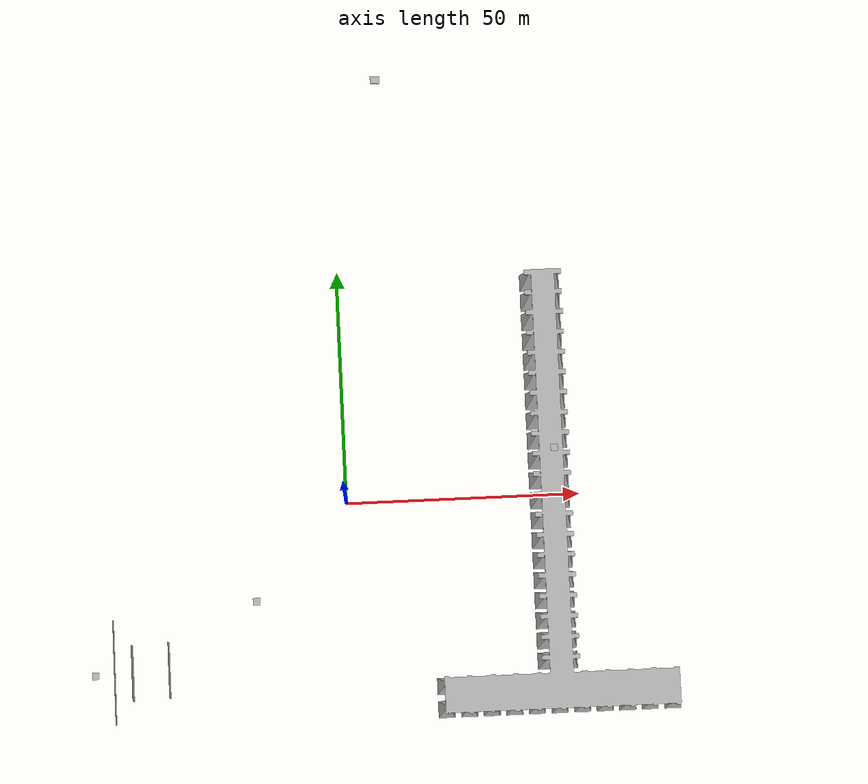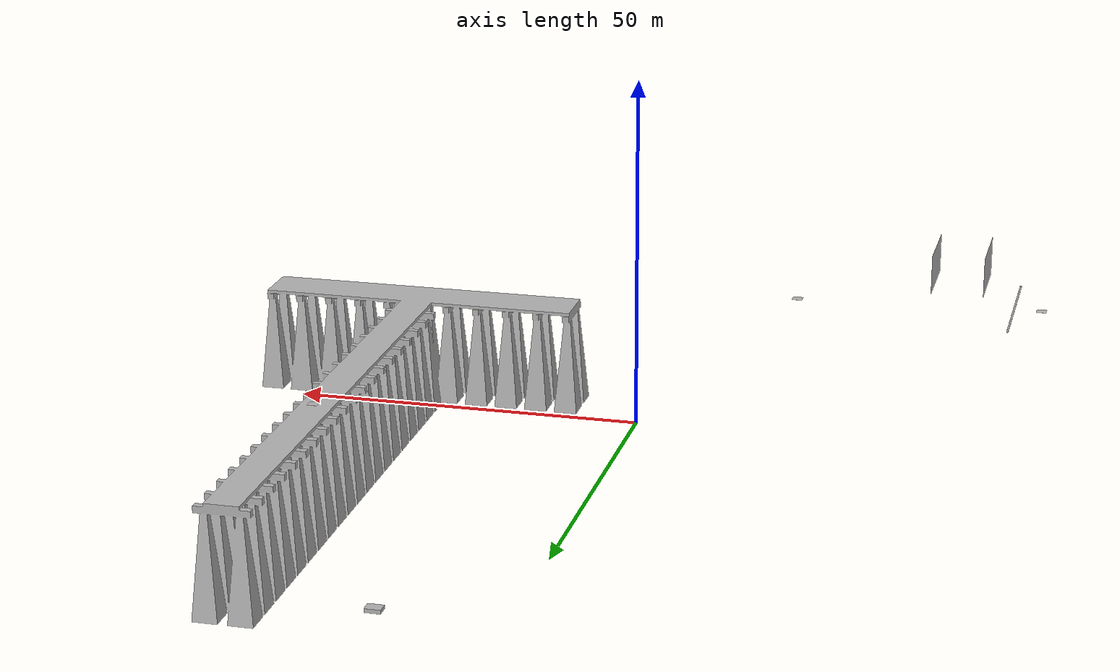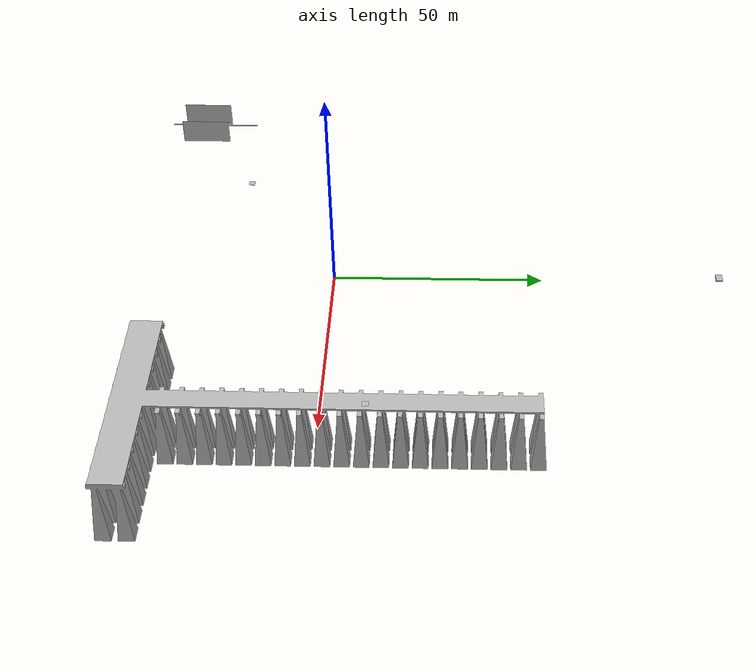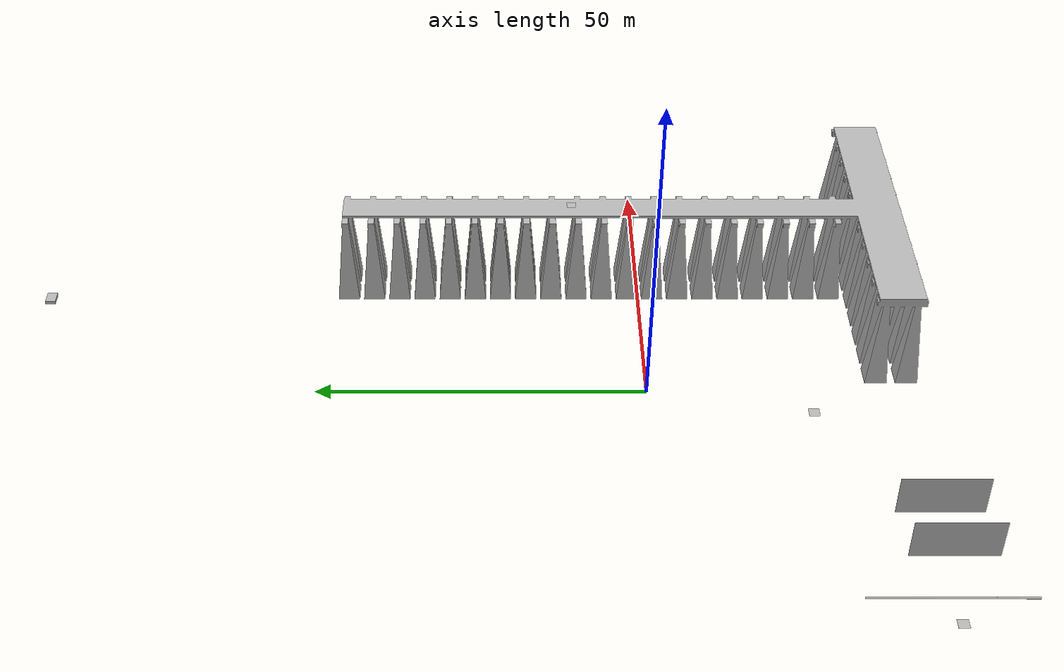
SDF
<sdf version="1.5">
 <world name="default">
  <plugin name="mrs_gazebo_static_transform_republisher_plugin" filename="libMRSGazeboStaticTransformRepublisher.so"/>
  <spherical_coordinates>
   <surface_model>EARTH_WGS84</surface_model>
   <latitude_deg>47.397743</latitude_deg>
   <longitude_deg>8.545594</longitude_deg>
   <elevation>0.0</elevation>
   <heading_deg>0</heading_deg>
  </spherical_coordinates>
  <physics name="default_physics" default="0" type="ode">
   <gravity>0 0 -9.8066</gravity>
   <ode>
    <solver>
     <type>quick</type>
     <iters>10</iters>
     <sor>1.3</sor>
     <use_dynamic_moi_rescaling>0</use_dynamic_moi_rescaling>
    </solver>
    <constraints>
     <cfm>0</cfm>
     <erp>0.2</erp>
     <contact_max_correcting_vel>1000</contact_max_correcting_vel>
     <contact_surface_layer>0.001</contact_surface_layer>
    </constraints>
   </ode>
   <max_step_size>0.004</max_step_size>
   <real_time_factor>1</real_time_factor>
   <real_time_update_rate>250</real_time_update_rate>
   <magnetic_field>6.0e-06 2.3e-05 -4.2e-05</magnetic_field>
  </physics>
  <scene><shadows>false</shadows></scene>
  <light name="sun" type="directional">
   <pose>0 0 1000 0.4 0.2 0</pose>
   <diffuse>1 1 1 1</diffuse>
   <specular>0.6 0.6 0.6 1</specular>
   <direction>0.1 0.1 -0.9</direction>
   <attenuation>
    <range>20</range>
    <constant>0.5</constant>
    <linear>0.01</linear>
    <quadratic>0.001</quadratic>
   </attenuation>
  </light>
  <model name="banner_front">
   <include><uri>model://banner</uri><pose>-22.2 -41.3 12 0 -0 -1.5708</pose></include>
  </model>
  <model name="banner_back">
   <include><uri>model://banner</uri><pose>-61.65 -28.4 12 0 -0 1.5708</pose></include>
  </model>
  <model name="cost_base"><include><uri>model://cost_base</uri><pose>10 90 10 1.57 0 0</pose></include></model>
  <model name="land_base_1">
   <include><uri>model://base_land</uri><pose>-19.5 -21 13.612 0 0 0</pose></include>
  </model>
  <model name="land_base_2"><include><uri>model://base_land</uri><pose>45 10 2.6 0 0 0</pose></include></model>
  <model name="land_base_3">
   <include><uri>model://base_land</uri><pose>-54 -35 9.85 0 0 0</pose></include>
  </model>
  <model name="pipe_oil_offshore">
   <include><uri>model://pipe_oil_offshore</uri><pose>-50 -34.5 10 0 -0 1.57</pose></include>
  </model>
  <model name="sensor_green_1">
   <include><uri>model://sensor_green</uri><pose>-50 -30 10.16 0.0 0.0 0.0</pose></include>
  </model>
  <model name="sensor_red_1">
   <include><uri>model://sensor_red</uri><pose>-50 -40 10.16 0.0 0.0 0.0</pose></include>
  </model>
  <include><uri>model://pier</uri><pose>40 50 -14 0 0 0</pose></include>
 </world>
</sdf>

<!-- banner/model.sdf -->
<sdf version='1.6'>
  <model name='banner'>
    <link name='link_0'>
      <inertial>
        <mass>1</mass>
        <inertia>
          <ixx>0.166667</ixx>
          <ixy>0</ixy>
          <ixz>0</ixz>
          <iyy>0.166667</iyy>
          <iyz>0</iyz>
          <izz>0.166667</izz>
        </inertia>
      </inertial>
      <pose frame=''>0 0 0 0 -0 0</pose>
      <visual name='visual'>
        <pose frame=''>0 0 0 0 -0 0</pose>
        <geometry>
          <mesh>
            <uri>model://banner/meshes/banner.obj</uri>
            <scale>2 2 2</scale>
          </mesh>
        </geometry>
        <transparency>0</transparency>
        <cast_shadows>1</cast_shadows>
      </visual>
      <collision name='collision'>
        <laser_retro>0</laser_retro>
        <max_contacts>10</max_contacts>
        <pose frame=''>0 0 0 0 -0 0</pose>
        <geometry>
          <mesh>
            <uri>model://banner/meshes/banner.obj</uri>
            <scale>2 2 2</scale>
          </mesh>
        </geometry>
        <surface>
          <friction>
            <ode>
              <mu>1</mu>
              <mu2>1</mu2>
              <fdir1>0 0 0</fdir1>
              <slip1>0</slip1>
              <slip2>0</slip2>
            </ode>
            <torsional>
              <coefficient>1</coefficient>
              <patch_radius>0</patch_radius>
              <surface_radius>0</surface_radius>
              <use_patch_radius>1</use_patch_radius>
              <ode>
                <slip>0</slip>
              </ode>
            </torsional>
          </friction>
          <bounce>
            <restitution_coefficient>0</restitution_coefficient>
            <threshold>1e+06</threshold>
          </bounce>
          <contact>
            <collide_without_contact>0</collide_without_contact>
            <collide_without_contact_bitmask>1</collide_without_contact_bitmask>
            <collide_bitmask>1</collide_bitmask>
            <ode>
              <soft_cfm>0</soft_cfm>
              <soft_erp>0.2</soft_erp>
              <kp>1e+13</kp>
              <kd>1</kd>
              <max_vel>0.01</max_vel>
              <min_depth>0</min_depth>
            </ode>
            <bullet>
              <split_impulse>1</split_impulse>
              <split_impulse_penetration_threshold>-0.01</split_impulse_penetration_threshold>
              <soft_cfm>0</soft_cfm>
              <soft_erp>0.2</soft_erp>
              <kp>1e+13</kp>
              <kd>1</kd>
            </bullet>
          </contact>
        </surface>
      </collision>
    </link>
    <static>1</static>
    <allow_auto_disable>1</allow_auto_disable>
  </model>
</sdf>

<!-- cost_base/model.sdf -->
<sdf version='1.6'>
  <model name='cost_base'>
    <link name='link'>
      <inertial>
        <mass>1</mass>
        <inertia>
          <ixx>0.166667</ixx>
          <ixy>0</ixy>
          <ixz>0</ixz>
          <iyy>0.166667</iyy>
          <iyz>0</iyz>
          <izz>0.166667</izz>
        </inertia>
      </inertial>
      <pose frame=''>0 0 0 0 -0 0</pose>
      <visual name='visual'>
        <pose frame=''>0 0 0 0 -0 0</pose>
        <geometry>
          <mesh>
            <uri>model://cost_base/meshes/cost_base.obj</uri>
            <scale>1.0 1.0 1.0</scale>
          </mesh>
        </geometry>
        <transparency>0</transparency>
        <cast_shadows>1</cast_shadows>
      </visual>
      <collision name='collision'>
        <laser_retro>0</laser_retro>
        <max_contacts>100</max_contacts>
        <pose frame=''>0 0 0 0 -0 0</pose>
        <geometry>
          <mesh>
            <uri>model://cost_base/meshes/cost_base.obj</uri>
            <scale>1.0 1.0 1.0</scale>
          </mesh>
        </geometry>
        <surface>
          <friction>
            <ode>
              <mu>100</mu>
              <mu2>100</mu2>
              <fdir1>0 0 0</fdir1>
              <slip1>0</slip1>
              <slip2>0</slip2>
            </ode>
            <torsional>
              <coefficient>1</coefficient>
              <patch_radius>1</patch_radius>
              <surface_radius>1</surface_radius>
              <use_patch_radius>1</use_patch_radius>
              <ode>
                <slip>0</slip>
              </ode>
            </torsional>
          </friction>
          <bounce>
            <restitution_coefficient>1</restitution_coefficient>
            <threshold>1e+06</threshold>
          </bounce>
          <contact>
            <collide_without_contact>0</collide_without_contact>
            <collide_without_contact_bitmask>1</collide_without_contact_bitmask>
            <collide_bitmask>1</collide_bitmask>
            <ode>
              <soft_cfm>0</soft_cfm>
              <soft_erp>0.2</soft_erp>
              <kp>1e+13</kp>
              <kd>1</kd>
              <max_vel>0.01</max_vel>
              <min_depth>0</min_depth>
            </ode>
            <bullet>
              <split_impulse>1</split_impulse>
              <split_impulse_penetration_threshold>-0.01</split_impulse_penetration_threshold>
              <soft_cfm>0</soft_cfm>
              <soft_erp>0.2</soft_erp>
              <kp>1e+13</kp>
              <kd>1</kd>
            </bullet>
          </contact>
        </surface>
      </collision>
    </link>
    <static>1</static>
    <allow_auto_disable>1</allow_auto_disable>
  </model>
</sdf>

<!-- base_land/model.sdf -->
<sdf version='1.6'>
  <model name='base_land'>
    <link name='link'>
      <inertial>
        <mass>1</mass>
        <inertia>
          <ixx>0.166667</ixx>
          <ixy>0</ixy>
          <ixz>0</ixz>
          <iyy>0.166667</iyy>
          <iyz>0</iyz>
          <izz>0.166667</izz>
        </inertia>
      </inertial>
      <pose frame=''>0 0 0 0 -0 0</pose>
      <visual name='visual'>
        <pose frame=''>0 0 0 0 -0 0</pose>
        <geometry>
          <mesh>
            <uri>model://base_land/meshes/base.obj</uri>
            <scale>1.0 1.0 1.0</scale>
          </mesh>
        </geometry>
        <transparency>0</transparency>
        <cast_shadows>1</cast_shadows>
      </visual>
      <collision name='collision'>
        <laser_retro>0</laser_retro>
        <max_contacts>100</max_contacts>
        <pose frame=''>0 0 0 0 -0 0</pose>
        <geometry>
          <mesh>
            <uri>model://base_land/meshes/base.obj</uri>
            <scale>1.0 1.0 1.0</scale>
          </mesh>
        </geometry>
        <surface>
          <friction>
            <ode>
              <mu>100</mu>
              <mu2>100</mu2>
              <fdir1>0 0 0</fdir1>
              <slip1>0</slip1>
              <slip2>0</slip2>
            </ode>
            <torsional>
              <coefficient>1</coefficient>
              <patch_radius>1</patch_radius>
              <surface_radius>1</surface_radius>
              <use_patch_radius>1</use_patch_radius>
              <ode>
                <slip>0</slip>
              </ode>
            </torsional>
          </friction>
          <bounce>
            <restitution_coefficient>1</restitution_coefficient>
            <threshold>1e+06</threshold>
          </bounce>
          <contact>
            <collide_without_contact>0</collide_without_contact>
            <collide_without_contact_bitmask>1</collide_without_contact_bitmask>
            <collide_bitmask>1</collide_bitmask>
            <ode>
              <soft_cfm>0</soft_cfm>
              <soft_erp>0.2</soft_erp>
              <kp>1e+13</kp>
              <kd>1</kd>
              <max_vel>0.01</max_vel>
              <min_depth>0</min_depth>
            </ode>
            <bullet>
              <split_impulse>1</split_impulse>
              <split_impulse_penetration_threshold>-0.01</split_impulse_penetration_threshold>
              <soft_cfm>0</soft_cfm>
              <soft_erp>0.2</soft_erp>
              <kp>1e+13</kp>
              <kd>1</kd>
            </bullet>
          </contact>
        </surface>
      </collision>
    </link>
    <static>1</static>
    <allow_auto_disable>1</allow_auto_disable>
  </model>
</sdf>

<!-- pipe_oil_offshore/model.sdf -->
<sdf version='1.6'>
  <model name='pipe_oil'>
    <link name='link_0'>
      <inertial>
        <mass>1</mass>
        <inertia>
          <ixx>0.166667</ixx>
          <ixy>0</ixy>
          <ixz>0</ixz>
          <iyy>0.166667</iyy>
          <iyz>0</iyz>
          <izz>0.166667</izz>
        </inertia>
      </inertial>
      <pose frame=''>0 0 0 0 -0 0</pose>
      <visual name='visual'>
        <pose frame=''>0 0 0 0 -0 0</pose>
        <geometry>
          <mesh>
            <uri>model://pipe_oil_offshore/meshes/pipe.obj</uri>
            <scale>11 1 1</scale>
          </mesh>
        </geometry>
        <transparency>0</transparency>
        <cast_shadows>1</cast_shadows>
      </visual>
      <collision name='collision'>
        <laser_retro>0</laser_retro>
        <max_contacts>10</max_contacts>
        <pose frame=''>0 0 0 0 -0 0</pose>
        <geometry>
          <mesh>
            <uri>model://pipe_oil_offshore/meshes/pipe.obj</uri>
            <scale>11 1 1</scale>
          </mesh>
        </geometry>
        <surface>
          <friction>
            <ode>
              <mu>1</mu>
              <mu2>1</mu2>
              <fdir1>0 0 0</fdir1>
              <slip1>0</slip1>
              <slip2>0</slip2>
            </ode>
            <torsional>
              <coefficient>1</coefficient>
              <patch_radius>0</patch_radius>
              <surface_radius>0</surface_radius>
              <use_patch_radius>1</use_patch_radius>
              <ode>
                <slip>0</slip>
              </ode>
            </torsional>
          </friction>
          <bounce>
            <restitution_coefficient>0</restitution_coefficient>
            <threshold>1e+06</threshold>
          </bounce>
          <contact>
            <collide_without_contact>0</collide_without_contact>
            <collide_without_contact_bitmask>1</collide_without_contact_bitmask>
            <collide_bitmask>1</collide_bitmask>
            <ode>
              <soft_cfm>0</soft_cfm>
              <soft_erp>0.2</soft_erp>
              <kp>1e+13</kp>
              <kd>1</kd>
              <max_vel>0.01</max_vel>
              <min_depth>0</min_depth>
            </ode>
            <bullet>
              <split_impulse>1</split_impulse>
              <split_impulse_penetration_threshold>-0.01</split_impulse_penetration_threshold>
              <soft_cfm>0</soft_cfm>
              <soft_erp>0.2</soft_erp>
              <kp>1e+13</kp>
              <kd>1</kd>
            </bullet>
          </contact>
        </surface>
      </collision>
    </link>
    <static>1</static>
    <allow_auto_disable>1</allow_auto_disable>
  </model>
</sdf>

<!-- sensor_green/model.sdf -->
<sdf version='1.6'>
  <model name='sensor_green'>
    <link name='link_4'>
      <inertial>
        <mass>1</mass>
        <inertia>
          <ixx>0.166667</ixx>
          <ixy>0</ixy>
          <ixz>0</ixz>
          <iyy>0.166667</iyy>
          <iyz>0</iyz>
          <izz>0.166667</izz>
        </inertia>
      </inertial>
      <pose frame=''>0 0 0 0 -0 0</pose>
      <visual name='visual'>
        <pose frame=''>0 0 0 0 -0 0</pose>
        <geometry>
          <mesh>
            <uri>model://sensor_green/meshes/sensor_green.obj</uri>
            <scale>1 1 1</scale>
          </mesh>
        </geometry>
        <material>
          <lighting>1</lighting>
          <script>
            <uri>file://media/materials/scripts/gazebo.material</uri>
            <name>Gazebo/Green</name>
          </script>
          <shader type='pixel'/>
        </material>
        <transparency>0</transparency>
        <cast_shadows>1</cast_shadows>
      </visual>
      <collision name='collision'>
        <laser_retro>0</laser_retro>
        <max_contacts>10</max_contacts>
        <pose frame=''>0 0 0 0 -0 0</pose>
        <geometry>
          <mesh>
            <uri>model://sensor_green/meshes/sensor_green.obj</uri>
            <scale>1 1 1</scale>
          </mesh>
        </geometry>
        <surface>
          <friction>
            <ode>
              <mu>1</mu>
              <mu2>1</mu2>
              <fdir1>0 0 0</fdir1>
              <slip1>0</slip1>
              <slip2>0</slip2>
            </ode>
            <torsional>
              <coefficient>1</coefficient>
              <patch_radius>0</patch_radius>
              <surface_radius>0</surface_radius>
              <use_patch_radius>1</use_patch_radius>
              <ode>
                <slip>0</slip>
              </ode>
            </torsional>
          </friction>
          <bounce>
            <restitution_coefficient>0</restitution_coefficient>
            <threshold>1e+06</threshold>
          </bounce>
          <contact>
            <collide_without_contact>0</collide_without_contact>
            <collide_without_contact_bitmask>1</collide_without_contact_bitmask>
            <collide_bitmask>1</collide_bitmask>
            <ode>
              <soft_cfm>0</soft_cfm>
              <soft_erp>0.2</soft_erp>
              <kp>1e+13</kp>
              <kd>1</kd>
              <max_vel>0.01</max_vel>
              <min_depth>0</min_depth>
            </ode>
            <bullet>
              <split_impulse>1</split_impulse>
              <split_impulse_penetration_threshold>-0.01</split_impulse_penetration_threshold>
              <soft_cfm>0</soft_cfm>
              <soft_erp>0.2</soft_erp>
              <kp>1e+13</kp>
              <kd>1</kd>
            </bullet>
          </contact>
        </surface>
      </collision>
    </link>
    <static>1</static>
    <allow_auto_disable>1</allow_auto_disable>
  </model>
</sdf>

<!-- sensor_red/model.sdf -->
<sdf version='1.6'>
  <model name='sensor_red'>
    <link name='link_5'>
      <inertial>
        <mass>1</mass>
        <inertia>
          <ixx>0.166667</ixx>
          <ixy>0</ixy>
          <ixz>0</ixz>
          <iyy>0.166667</iyy>
          <iyz>0</iyz>
          <izz>0.166667</izz>
        </inertia>
      </inertial>
      <pose frame=''>0 0 0 0 -0 0</pose>
      <visual name='visual'>
        <pose frame=''>0 0 0 0 -0 0</pose>
        <geometry>
          <mesh>
            <uri>model://sensor_red/meshes/sensor_red.obj</uri>
            <scale>1 1 1</scale>
          </mesh>
        </geometry>
        <material>
          <lighting>1</lighting>
          <script>
            <uri>file://media/materials/scripts/gazebo.material</uri>
            <name>Gazebo/Red</name>
          </script>
          <shader type='pixel'/>
        </material>
        <transparency>0</transparency>
        <cast_shadows>1</cast_shadows>
      </visual>
      <collision name='collision'>
        <laser_retro>0</laser_retro>
        <max_contacts>10</max_contacts>
        <pose frame=''>0 0 0 0 -0 0</pose>
        <geometry>
          <mesh>
            <uri>model://sensor_red/meshes/sensor_red.obj</uri>
            <scale>1 1 1</scale>
          </mesh>
        </geometry>
        <surface>
          <friction>
            <ode>
              <mu>1</mu>
              <mu2>1</mu2>
              <fdir1>0 0 0</fdir1>
              <slip1>0</slip1>
              <slip2>0</slip2>
            </ode>
            <torsional>
              <coefficient>1</coefficient>
              <patch_radius>0</patch_radius>
              <surface_radius>0</surface_radius>
              <use_patch_radius>1</use_patch_radius>
              <ode>
                <slip>0</slip>
              </ode>
            </torsional>
          </friction>
          <bounce>
            <restitution_coefficient>0</restitution_coefficient>
            <threshold>1e+06</threshold>
          </bounce>
          <contact>
            <collide_without_contact>0</collide_without_contact>
            <collide_without_contact_bitmask>1</collide_without_contact_bitmask>
            <collide_bitmask>1</collide_bitmask>
            <ode>
              <soft_cfm>0</soft_cfm>
              <soft_erp>0.2</soft_erp>
              <kp>1e+13</kp>
              <kd>1</kd>
              <max_vel>0.01</max_vel>
              <min_depth>0</min_depth>
            </ode>
            <bullet>
              <split_impulse>1</split_impulse>
              <split_impulse_penetration_threshold>-0.01</split_impulse_penetration_threshold>
              <soft_cfm>0</soft_cfm>
              <soft_erp>0.2</soft_erp>
              <kp>1e+13</kp>
              <kd>1</kd>
            </bullet>
          </contact>
        </surface>
      </collision>
    </link>
    <static>1</static>
    <allow_auto_disable>1</allow_auto_disable>
  </model>
</sdf>

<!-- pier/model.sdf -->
<sdf version='1.7'>
  <model name='pier'>
    <link name='link_0'>
      <inertial>
        <mass>1</mass>
        <inertia>
          <ixx>0.166667</ixx>
          <ixy>0</ixy>
          <ixz>0</ixz>
          <iyy>0.166667</iyy>
          <iyz>0</iyz>
          <izz>0.166667</izz>
        </inertia>
      </inertial>
      <pose>0 0 0 0 -0 0</pose>
      <visual name='visual'>
        <pose>0 0 0 0 -0 0</pose>
        <geometry>
          <mesh>
            <uri>model://pier/meshes/pier.obj</uri>
            <scale>1 1 1</scale>
          </mesh>
        </geometry>
        <transparency>0</transparency>
        <cast_shadows>1</cast_shadows>
      </visual>
      <collision name='collision'>
        <laser_retro>0</laser_retro>
        <max_contacts>10</max_contacts>
        <pose>0 0 0 0 -0 0</pose>
        <geometry>
          <mesh>
            <uri>model://pier/meshes/pier.obj</uri>
            <scale>1 1 1</scale>
          </mesh>
        </geometry>
        <surface>
          <friction>
            <ode>
              <mu>1</mu>
              <mu2>1</mu2>
              <fdir1>0 0 0</fdir1>
              <slip1>0</slip1>
              <slip2>0</slip2>
            </ode>
            <torsional>
              <coefficient>1</coefficient>
              <patch_radius>0</patch_radius>
              <surface_radius>0</surface_radius>
              <use_patch_radius>1</use_patch_radius>
              <ode>
                <slip>0</slip>
              </ode>
            </torsional>
          </friction>
          <bounce>
            <restitution_coefficient>0</restitution_coefficient>
            <threshold>1e+06</threshold>
          </bounce>
          <contact>
            <collide_without_contact>0</collide_without_contact>
            <collide_without_contact_bitmask>1</collide_without_contact_bitmask>
            <collide_bitmask>1</collide_bitmask>
            <ode>
              <soft_cfm>0</soft_cfm>
              <soft_erp>0.2</soft_erp>
              <kp>1e+13</kp>
              <kd>1</kd>
              <max_vel>0.01</max_vel>
              <min_depth>0</min_depth>
            </ode>
            <bullet>
              <split_impulse>1</split_impulse>
              <split_impulse_penetration_threshold>-0.01</split_impulse_penetration_threshold>
              <soft_cfm>0</soft_cfm>
              <soft_erp>0.2</soft_erp>
              <kp>1e+13</kp>
              <kd>1</kd>
            </bullet>
          </contact>
        </surface>
      </collision>
    </link>
    <static>1</static>
    <allow_auto_disable>1</allow_auto_disable>
  </model>
</sdf>
